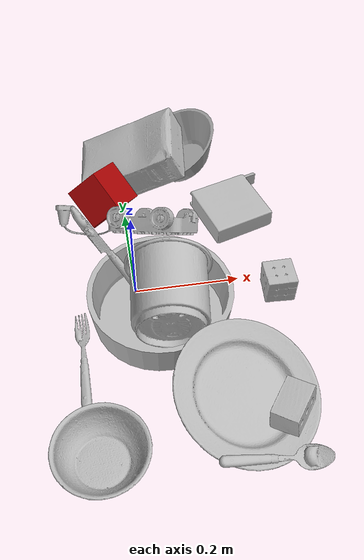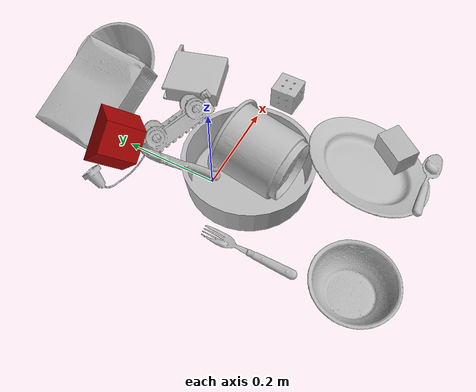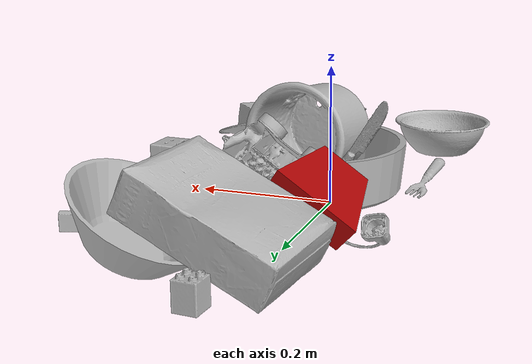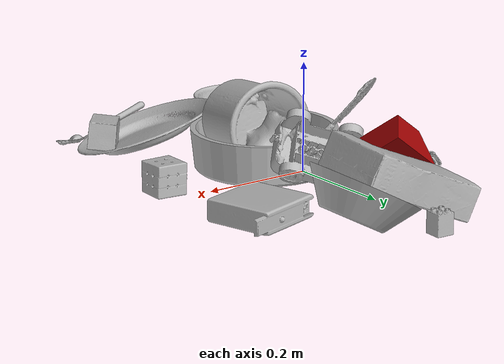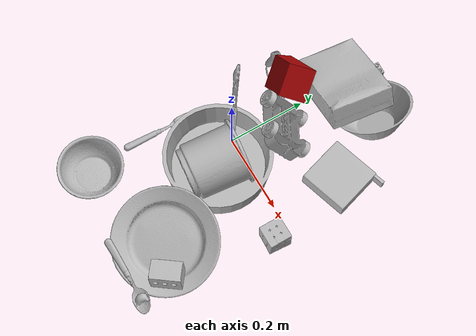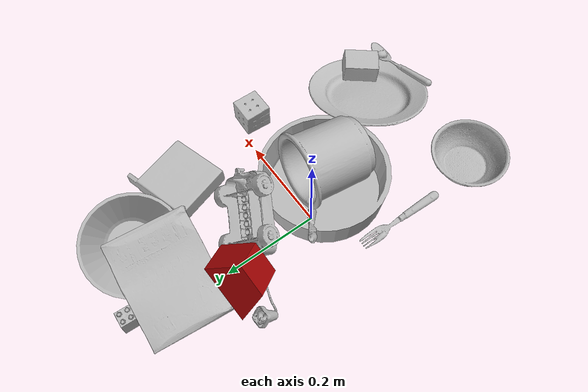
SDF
<sdf version="1.4">
  <world name="default">
    <light name="light1" type="point">
      <pose>0 0 1 0 0 0</pose>
      <diffuse>3 3 3 1</diffuse>
      <specular>3 3 3 1</specular>
    </light>
    <light name="light2" type="point">
      <pose>0 0.5 2 0 0 0</pose>
      <diffuse>1 1 1 1</diffuse>
      <specular>1 1 1 1</specular>
    </light>
    <light name="light3" type="point">
      <pose>0 0.5 2 0 0 0</pose>
      <diffuse>3 3 3 1</diffuse>
      <specular>3 3 3 1</specular>
    </light>
    <scene>
      <ambient>0.7 0.7 0.7</ambient>
    </scene>
    <model name="plate1">
      <link name="link_plate1">
        <collision name="default">
          <geometry>
            <mesh>
              <uri>model://pan_tefal/collision_meshes/collision.obj</uri>
              <scale>1.0 1.0 1.0</scale>
            </mesh>
          </geometry>
          <surface>
            <friction>
              <ode>
                <mu>0.5</mu>
                <mu2>0.5</mu2>
              </ode>
            </friction>
          <contact>
        <ode>
            <max_vel>0</max_vel>
            <min_depth>0.0001</min_depth>
            <kp>1e8</kp>
        </ode>
    </contact></surface>
        </collision>
        <visual name="default">
          <geometry>
            <mesh>
              <uri>model://pan_tefal/visual_meshes/visual.dae</uri>
              <scale>1.0 1.0 1.0</scale>
            </mesh>
          </geometry>
        </visual>
        <inertial>
          <mass>0.7575002908706665</mass>
          <pose>-0.00018002181604970247 3.278869189671241e-05 -0.00851493701338768 0.0008190213215647545 -0.0003301469994364688 -0.3318472895374236</pose>
          <inertia>
            <ixx>0.0052289874</ixx>
            <iyy>0.0052627004</iyy>
            <izz>0.009625561</izz>
            <ixy>0</ixy>
            <ixz>0</ixz>
            <iyz>0</iyz>
          </inertia>
        </inertial>
      </link>
      <pose>0.040306344628334045 -0.06201718747615814 0.03805001452565193 -2.2029348824931242e-07 5.07509120844516e-07 0.9796964409874244</pose>
    </model>
    <model name="plate2">
      <link name="link_plate2">
        <collision name="default">
          <geometry>
            <mesh>
              <uri>model://plate/collision_meshes/collision.obj</uri>
              <scale>1.0 1.0 1.0</scale>
            </mesh>
          </geometry>
          <surface>
            <friction>
              <ode>
                <mu>0.5</mu>
                <mu2>0.5</mu2>
              </ode>
            </friction>
          <contact>
        <ode>
            <max_vel>0</max_vel>
            <min_depth>0.0001</min_depth>
            <kp>1e8</kp>
        </ode>
    </contact></surface>
        </collision>
        <visual name="default">
          <geometry>
            <mesh>
              <uri>model://plate/visual_meshes/visual.dae</uri>
              <scale>1.0 1.0 1.0</scale>
            </mesh>
          </geometry>
        </visual>
        <inertial>
          <mass>0.24305373430252075</mass>
          <pose>-0.0006044657784514129 0.0002782582014333457 -0.0010561988456174731 0.0022187349237576767 -0.0032255124479001144 0.4526250186623527</pose>
          <inertia>
            <ixx>0.00113701</ixx>
            <iyy>0.0011261352</iyy>
            <izz>0.0022238225</izz>
            <ixy>0</ixy>
            <ixz>0</ixz>
            <iyz>0</iyz>
          </inertia>
        </inertial>
      </link>
      <pose>0.155037522315979 -0.26986995339393616 0.03831569850444794 0.26679738106032935 -0.18037742696900055 1.4246873673054643</pose>
    </model>
    <model name="bowl1">
      <link name="link_bowl1">
        <collision name="default">
          <geometry>
            <mesh>
              <uri>model://bowl/collision_meshes/collision.obj</uri>
              <scale>1.0 1.0 1.0</scale>
            </mesh>
          </geometry>
          <surface>
            <friction>
              <ode>
                <mu>0.5</mu>
                <mu2>0.5</mu2>
              </ode>
            </friction>
          <contact>
        <ode>
            <max_vel>0</max_vel>
            <min_depth>0.0001</min_depth>
            <kp>1e8</kp>
        </ode>
    </contact></surface>
        </collision>
        <visual name="default">
          <geometry>
            <mesh>
              <uri>model://bowl/visual_meshes/visual.dae</uri>
              <scale>1.0 1.0 1.0</scale>
            </mesh>
          </geometry>
        </visual>
        <inertial>
          <mass>0.08028676360845566</mass>
          <pose>0.00020445045083761215 -0.0010302026057615876 -0.0008042661938816309 -0.015764207515600946 0.014546645366850262 0.7140316236369888</pose>
          <inertia>
            <ixx>0.00018442512</ixx>
            <iyy>0.00018030431</iyy>
            <izz>0.0003102665</izz>
            <ixy>0</ixy>
            <ixz>0</ixz>
            <iyz>0</iyz>
          </inertia>
        </inertial>
      </link>
      <pose>-0.0936729907989502 -0.3368860185146332 0.02778000384569168 1.0258778269625157e-08 -4.5738402238876544e-08 2.2392671729271836</pose>
    </model>
    <model name="bowl2">
      <link name="link_bowl2">
        <collision name="default">
          <geometry>
            <mesh>
              <uri>model://bowl_a/collision_meshes/collision.obj</uri>
              <scale>1.0 1.0 1.0</scale>
            </mesh>
          </geometry>
          <surface>
            <friction>
              <ode>
                <mu>0.5</mu>
                <mu2>0.5</mu2>
              </ode>
            </friction>
          <contact>
        <ode>
            <max_vel>0</max_vel>
            <min_depth>0.0001</min_depth>
            <kp>1e8</kp>
        </ode>
    </contact></surface>
        </collision>
        <visual name="default">
          <geometry>
            <mesh>
              <uri>model://bowl_a/visual_meshes/visual.dae</uri>
              <scale>1.0 1.0 1.0</scale>
            </mesh>
          </geometry>
        </visual>
        <inertial>
          <mass>0.2016693353652954</mass>
          <pose>0.000278673687716946 4.731108856503852e-05 -0.0013765295734629035 -0.0009805301894988984 -0.0010938186520021772 -0.19123883274053055</pose>
          <inertia>
            <ixx>0.00057416206</ixx>
            <iyy>0.000577687</iyy>
            <izz>0.0010211696</izz>
            <ixy>0</ixy>
            <ixz>0</ixz>
            <iyz>0</iyz>
          </inertia>
        </inertial>
      </link>
      <pose>0.13597334921360016 0.32075202465057373 0.05354119837284088 -0.32696886257468244 0.3877638728675843 2.3899367819916932</pose>
    </model>
    <model name="silverware1">
      <link name="link_silverware1">
        <collision name="default">
          <geometry>
            <mesh>
              <uri>model://spoon/collision_meshes/collision.obj</uri>
              <scale>1.0 1.0 1.0</scale>
            </mesh>
          </geometry>
          <surface>
            <friction>
              <ode>
                <mu>0.5</mu>
                <mu2>0.5</mu2>
              </ode>
            </friction>
          <contact>
        <ode>
            <max_vel>0</max_vel>
            <min_depth>0.0001</min_depth>
            <kp>1e8</kp>
        </ode>
    </contact></surface>
        </collision>
        <visual name="default">
          <geometry>
            <mesh>
              <uri>model://spoon/visual_meshes/visual.dae</uri>
              <scale>1.0 1.0 1.0</scale>
            </mesh>
          </geometry>
        </visual>
        <inertial>
          <mass>0.023438503965735435</mass>
          <pose>-0.005526317749172449 -0.0016034176805987954 -0.000727164966519922 0.03521671071703309 -0.03906584129558259 0.006150610048623938</pose>
          <inertia>
            <ixx>1.3036873e-06</ixx>
            <iyy>8.918272e-05</iyy>
            <izz>8.982564e-05</izz>
            <ixy>0</ixy>
            <ixz>0</ixz>
            <iyz>0</iyz>
          </inertia>
        </inertial>
      </link>
      <pose>0.17993725836277008 -0.3836330771446228 0.02693752571940422 0.3598218334598011 0.2975310482462699 0.026466801033629337</pose>
    </model>
    <model name="box1">
      <link name="link_box1">
        <collision name="default">
          <geometry>
            <mesh>
              <uri>model://cracker_box/collision_meshes/collision.obj</uri>
              <scale>1.0 1.0 1.0</scale>
            </mesh>
          </geometry>
          <surface>
            <friction>
              <ode>
                <mu>0.5</mu>
                <mu2>0.5</mu2>
              </ode>
            </friction>
          <contact>
        <ode>
            <max_vel>0</max_vel>
            <min_depth>0.0001</min_depth>
            <kp>1e8</kp>
        </ode>
    </contact></surface>
        </collision>
        <visual name="default">
          <geometry>
            <mesh>
              <uri>model://cracker_box/visual_meshes/visual.dae</uri>
              <scale>1.0 1.0 1.0</scale>
            </mesh>
          </geometry>
        </visual>
        <inertial>
          <mass>3.1733922958374023</mass>
          <pose>0.0009464119793847203 0.00025434247800149024 -0.0017029535956680775 -0.00031620768891544627 -0.011106485874643508 0.0025467963987026074</pose>
          <inertia>
            <ixx>0.008071693</ixx>
            <iyy>0.013327951</iyy>
            <izz>0.01902021</izz>
            <ixy>0</ixy>
            <ixz>0</ixz>
            <iyz>0</iyz>
          </inertia>
        </inertial>
      </link>
      <pose>0.029877465218305588 0.297985315322876 0.07321084290742874 0.008668489571598367 0.4350418456378141 3.036592562297548</pose>
    </model>
    <model name="box2">
      <link name="link_box2">
        <collision name="default">
          <geometry>
            <mesh>
              <uri>model://rubiks_cube/collision_meshes/collision.obj</uri>
              <scale>1.0 1.0 1.0</scale>
            </mesh>
          </geometry>
          <surface>
            <friction>
              <ode>
                <mu>0.5</mu>
                <mu2>0.5</mu2>
              </ode>
            </friction>
          <contact>
        <ode>
            <max_vel>0</max_vel>
            <min_depth>0.0001</min_depth>
            <kp>1e8</kp>
        </ode>
    </contact></surface>
        </collision>
        <visual name="default">
          <geometry>
            <mesh>
              <uri>model://rubiks_cube/visual_meshes/visual.dae</uri>
              <scale>1.0 1.0 1.0</scale>
            </mesh>
          </geometry>
        </visual>
        <inertial>
          <mass>0.15184316039085388</mass>
          <pose>2.6721041649580002e-05 5.2569666877388954e-05 -7.264316536748083e-06 -0.0546734747968529 -0.09813870099197174 -0.03445517010401606</pose>
          <inertia>
            <ixx>8.390353e-05</ixx>
            <iyy>8.351226e-05</iyy>
            <izz>8.459882e-05</izz>
            <ixy>0</ixy>
            <ixz>0</ixz>
            <iyz>0</iyz>
          </inertia>
        </inertial>
      </link>
      <pose>0.26938000321388245 -0.039555855095386505 0.02905971184372902 -3.1341394228951955 0.010892404015624798 -1.6147929183002603</pose>
    </model>
    <model name="cup1">
      <link name="link_cup1">
        <collision name="default">
          <geometry>
            <mesh>
              <uri>model://f_cups/collision_meshes/collision.obj</uri>
              <scale>2.0 2.0 2.0</scale>
            </mesh>
          </geometry>
          <surface>
            <friction>
              <ode>
                <mu>0.5</mu>
                <mu2>0.5</mu2>
              </ode>
            </friction>
          <contact>
        <ode>
            <max_vel>0</max_vel>
            <min_depth>0.0001</min_depth>
            <kp>1e8</kp>
        </ode>
    </contact></surface>
        </collision>
        <visual name="default">
          <geometry>
            <mesh>
              <uri>model://f_cups/visual_meshes/visual.dae</uri>
              <scale>2.0 2.0 2.0</scale>
            </mesh>
          </geometry>
        </visual>
        <inertial>
          <mass>0.31799542903900146</mass>
          <pose>-0.006342939101159573 -0.0012480145087465644 -0.00731107359752059 0.7862267301708457 -0.2607925342729672 -0.18237300859269054</pose>
          <inertia>
            <ixx>0.0011956966</ixx>
            <iyy>0.0012542997</iyy>
            <izz>0.001305761</izz>
            <ixy>0</ixy>
            <ixz>0</ixz>
            <iyz>0</iyz>
          </inertia>
        </inertial>
      </link>
      <pose>0.05433659255504608 -0.08191703259944916 0.08272925019264221 -1.4499375201685092 -0.748944344902722 -0.19437878551585377</pose>
    </model>
    <model name="silverware2">
      <link name="link_silverware2">
        <collision name="default">
          <geometry>
            <mesh>
              <uri>model://knife/collision_meshes/collision.obj</uri>
              <scale>1.0 1.0 1.0</scale>
            </mesh>
          </geometry>
          <surface>
            <friction>
              <ode>
                <mu>0.5</mu>
                <mu2>0.5</mu2>
              </ode>
            </friction>
          <contact>
        <ode>
            <max_vel>0</max_vel>
            <min_depth>0.0001</min_depth>
            <kp>1e8</kp>
        </ode>
    </contact></surface>
        </collision>
        <visual name="default">
          <geometry>
            <mesh>
              <uri>model://knife/visual_meshes/visual.dae</uri>
              <scale>1.0 1.0 1.0</scale>
            </mesh>
          </geometry>
        </visual>
        <inertial>
          <mass>0.01713745854794979</mass>
          <pose>-0.02378525771200657 0.0015275123296305537 5.062021591584198e-05 0.07305753061421462 0.017248419855317693 -0.007409818535045194</pose>
          <inertia>
            <ixx>4.864306e-07</ixx>
            <iyy>6.583934e-05</iyy>
            <izz>6.5996e-05</izz>
            <ixy>0</ixy>
            <ixz>0</ixz>
            <iyz>0</iyz>
          </inertia>
        </inertial>
      </link>
      <pose>-0.04639606922864914 0.03285609558224678 0.09005691111087799 2.378838173720558 -0.853305239429721 2.475362643595659</pose>
    </model>
    <model name="silverware3">
      <link name="link_silverware3">
        <collision name="default">
          <geometry>
            <mesh>
              <uri>model://fork/collision_meshes/collision.obj</uri>
              <scale>1.0 1.0 1.0</scale>
            </mesh>
          </geometry>
          <surface>
            <friction>
              <ode>
                <mu>0.5</mu>
                <mu2>0.5</mu2>
              </ode>
            </friction>
          <contact>
        <ode>
            <max_vel>0</max_vel>
            <min_depth>0.0001</min_depth>
            <kp>1e8</kp>
        </ode>
    </contact></surface>
        </collision>
        <visual name="default">
          <geometry>
            <mesh>
              <uri>model://fork/visual_meshes/visual.dae</uri>
              <scale>1.0 1.0 1.0</scale>
            </mesh>
          </geometry>
        </visual>
        <inertial>
          <mass>0.012323527596890926</mass>
          <pose>-0.029570043087005615 0.00046588233090005815 0.0003218861238565296 -0.013551145261099908 -0.01097783717976447 0.01445390335153306</pose>
          <inertia>
            <ixx>4.3200933e-07</ixx>
            <iyy>3.2173175e-05</iyy>
            <izz>3.236641e-05</izz>
            <ixy>0</ixy>
            <ixz>0</ixz>
            <iyz>0</iyz>
          </inertia>
        </inertial>
      </link>
      <pose>-0.10958219319581985 -0.14203579723834991 0.005702615715563297 -0.17989726804237546 0.0250586916791913 1.548323682565543</pose>
    </model>
    <model name="toy1">
      <link name="link_toy1">
        <collision name="default">
          <geometry>
            <mesh>
              <uri>model://foam_brick/collision_meshes/collision.obj</uri>
              <scale>1.0 1.0 1.0</scale>
            </mesh>
          </geometry>
          <surface>
            <friction>
              <ode>
                <mu>0.5</mu>
                <mu2>0.5</mu2>
              </ode>
            </friction>
          <contact>
        <ode>
            <max_vel>0</max_vel>
            <min_depth>0.0001</min_depth>
            <kp>1e8</kp>
        </ode>
    </contact></surface>
        </collision>
        <visual name="default">
          <geometry>
            <mesh>
              <uri>model://foam_brick/visual_meshes/visual.dae</uri>
              <scale>1.0 1.0 1.0</scale>
            </mesh>
          </geometry>
        </visual>
        <inertial>
          <mass>0.22379855811595917</mass>
          <pose>-0.00025224717683158815 0.0003458436403889209 -0.0002532101352699101 -0.29401565582258504 0.017274431815567964 -0.0007449878256007176</pose>
          <inertia>
            <ixx>9.775939e-05</ixx>
            <iyy>0.00015607789</iyy>
            <izz>0.00015806146</izz>
            <ixy>0</ixy>
            <ixz>0</ixz>
            <iyz>0</iyz>
          </inertia>
        </inertial>
      </link>
      <pose>0.22490037977695465 -0.3057929277420044 0.03880421817302704 -1.4664146885362923 0.06081301577235152 -2.2151589770690134</pose>
    </model>
    <model name="toy2">
      <link name="link_toy2">
        <collision name="default">
          <geometry>
            <mesh>
              <uri>model://g_lego_duplo/collision_meshes/collision.obj</uri>
              <scale>1.0 1.0 1.0</scale>
            </mesh>
          </geometry>
          <surface>
            <friction>
              <ode>
                <mu>0.5</mu>
                <mu2>0.5</mu2>
              </ode>
            </friction>
          <contact>
        <ode>
            <max_vel>0</max_vel>
            <min_depth>0.0001</min_depth>
            <kp>1e8</kp>
        </ode>
    </contact></surface>
        </collision>
        <visual name="default">
          <geometry>
            <mesh>
              <uri>model://g_lego_duplo/visual_meshes/visual.dae</uri>
              <scale>1.0 1.0 1.0</scale>
            </mesh>
          </geometry>
        </visual>
        <inertial>
          <mass>0.5124852657318115</mass>
          <pose>-0.05004769191145897 0.0017554633086547256 0.003880675183609128 0.010962987419080987 0.0381082502855883 -0.09653031806986456</pose>
          <inertia>
            <ixx>0.0007425969</ixx>
            <iyy>0.0022451086</iyy>
            <izz>0.0028087152</izz>
            <ixy>0</ixy>
            <ixz>0</ixz>
            <iyz>0</iyz>
          </inertia>
        </inertial>
      </link>
      <pose>-0.0013000741600990295 0.13800525665283203 0.05139805004000664 -2.3698734475468233 0.3148305087416929 2.6390233633092106</pose>
    </model>
    <model name="toy3">
      <link name="link_toy3">
        <collision name="default">
          <geometry>
            <mesh>
              <uri>model://nine_hole_peg_test/collision_meshes/collision.obj</uri>
              <scale>1.0 1.0 1.0</scale>
            </mesh>
          </geometry>
          <surface>
            <friction>
              <ode>
                <mu>0.5</mu>
                <mu2>0.5</mu2>
              </ode>
            </friction>
          <contact>
        <ode>
            <max_vel>0</max_vel>
            <min_depth>0.0001</min_depth>
            <kp>1e8</kp>
        </ode>
    </contact></surface>
        </collision>
        <visual name="default">
          <geometry>
            <mesh>
              <uri>model://nine_hole_peg_test/visual_meshes/visual.dae</uri>
              <scale>1.0 1.0 1.0</scale>
            </mesh>
          </geometry>
        </visual>
        <inertial>
          <mass>0.8364987969398499</mass>
          <pose>-0.004617386497557163 -0.009647614322602749 2.6460691515239887e-05 -0.0014666793226822761 0.000719418076932787 -0.634241593386854</pose>
          <inertia>
            <ixx>0.0013080036</ixx>
            <iyy>0.0012212693</iyy>
            <izz>0.0022920077</izz>
            <ixy>0</ixy>
            <ixz>0</ixz>
            <iyz>0</iyz>
          </inertia>
        </inertial>
      </link>
      <pose>0.2286207228899002 0.17859840393066406 0.02079099975526333 3.1415926511904506 -4.830844549986607e-10 1.8594762622590697</pose>
    </model>
    <model name="toy4">
      <link name="link_toy4">
        <collision name="default">
          <geometry>
            <mesh>
              <uri>model://b_lego_duplo/collision_meshes/collision.obj</uri>
              <scale>1.0 1.0 1.0</scale>
            </mesh>
          </geometry>
          <surface>
            <friction>
              <ode>
                <mu>0.5</mu>
                <mu2>0.5</mu2>
              </ode>
            </friction>
          <contact>
        <ode>
            <max_vel>0</max_vel>
            <min_depth>0.0001</min_depth>
            <kp>1e8</kp>
        </ode>
    </contact></surface>
        </collision>
        <visual name="default">
          <geometry>
            <mesh>
              <uri>model://b_lego_duplo/visual_meshes/visual.dae</uri>
              <scale>1.0 1.0 1.0</scale>
            </mesh>
          </geometry>
        </visual>
        <inertial>
          <mass>0.0316849946975708</mass>
          <pose>-0.00011053055641241372 -9.15226701181382e-06 0.0019294292433187366 -0.03749472548528336 -0.026354304906346077 0.4518915128408031</pose>
          <inertia>
            <ixx>6.4845735e-06</ixx>
            <iyy>6.5281647e-06</iyy>
            <izz>5.777544e-06</izz>
            <ixy>0</ixy>
            <ixz>0</ixz>
            <iyz>0</iyz>
          </inertia>
        </inertial>
      </link>
      <pose>0.029064742848277092 0.398026704788208 0.02181500941514969 2.451715474802942e-08 2.864920601108303e-07 1.5130117977814548</pose>
    </model>
    <model name="toy5">
      <link name="link_toy5">
        <collision name="default">
          <geometry>
            <mesh>
              <uri>model://prism/collision_meshes/collision.obj</uri>
              <scale>1.0 1.0 1.0</scale>
            </mesh>
          </geometry>
          <surface>
            <friction>
              <ode>
                <mu>0.5</mu>
                <mu2>0.5</mu2>
              </ode>
            </friction>
          <contact>
        <ode>
            <max_vel>0</max_vel>
            <min_depth>0.0001</min_depth>
            <kp>1e8</kp>
        </ode>
    </contact></surface>
        </collision>
        <visual name="default">
          <geometry>
            <mesh>
              <uri>model://prism/visual_meshes/visual.dae</uri>
              <scale>1.0 1.0 1.0</scale>
            </mesh>
          </geometry>
        </visual>
        <inertial>
          <mass>0.34586653113365173</mass>
          <pose>-9.853597293840721e-05 -4.96157269935793e-07 -0.0033869100734591484 0.0 0.006559180766136186 0.0</pose>
          <inertia>
            <ixx>0.00031214024</ixx>
            <iyy>0.00037722557</iyy>
            <izz>0.00046205617</izz>
            <ixy>0</ixy>
            <ixz>0</ixz>
            <iyz>0</iyz>
          </inertia>
        </inertial>
      </link>
      <pose>-0.049199674278497696 0.18621321022510529 0.07703185826539993 -0.7959430260281093 0.6326050139759828 -3.0357356628726273</pose>
    </model>
  <physics type="ode">
      <max_contacts>50</max_contacts>
      <ode>
        <solver>
          <type>quick</type>
          <iters>75</iters>
        </solver>
        <constraints>
          <contact_max_correcting_vel>0</contact_max_correcting_vel>
          <contact_surface_layer>0</contact_surface_layer>
        </constraints>
      </ode>
    </physics></world>
</sdf>
